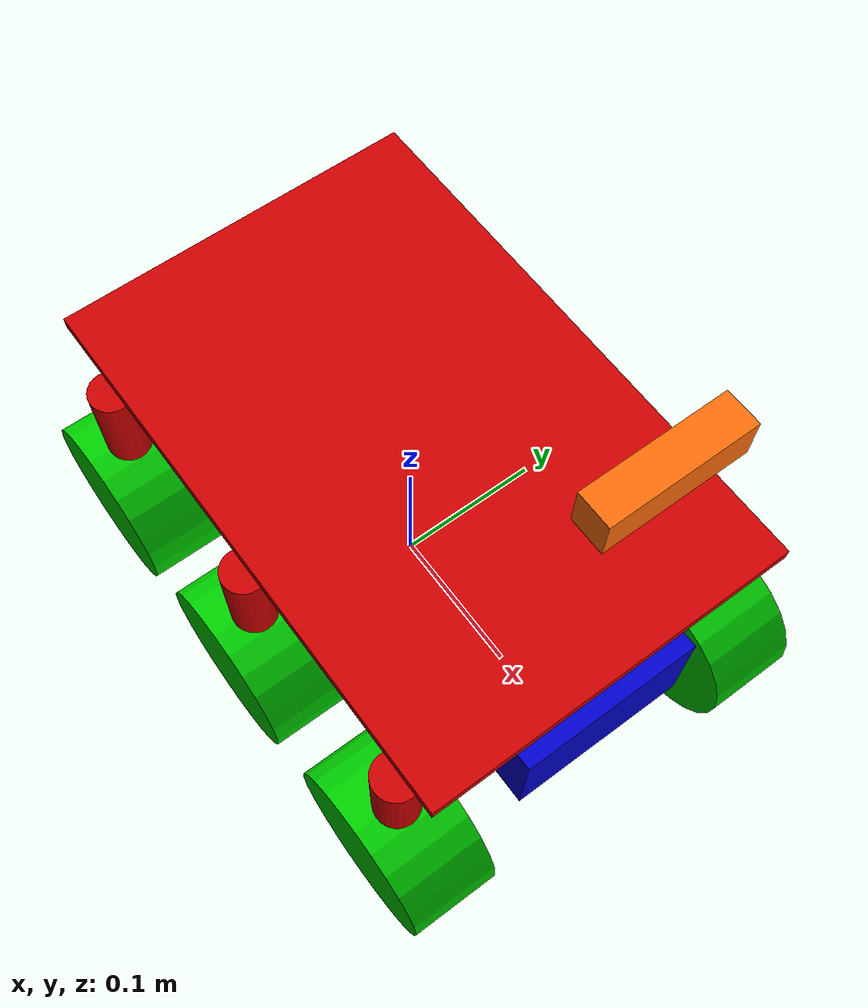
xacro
<?xml version="1.0"?>

<!-- created by MecRoKa GBi 7.4.2021-->
<!-- building the complete robot descrition by combining several (following) macros -->
<!--  1. create basic robot structure -->
<!--  2. definition/description of the control interface for ros control -->
<!--  3. definition/description of the ros2_control interface for gazebo via a 'your_controller_config.yaml' file -->

<robot xmlns:xacro="http://www.ros.org/wiki/xacro" name="myackrov">

  <!-- Import myackrov_base macro -->
  <xacro:include filename="$(find myackrov_description)/urdf/myackrov_base.urdf.xacro" />

  <!-- Import ros2 HW interface control tag macro -->
  <xacro:include filename="$(find myackrov_bringup)/ros2_control/myackrov_base.ros2_control.urdf.xacro" />

  <!-- Import setup for Gazebo macro for simulation-->
  <xacro:include filename="$(find myackrov_bringup)/gazebo/myackrov_base.gazebo.urdf.xacro" />

  <!-- Import color definitions  -->
  <xacro:include filename="$(find myackrov_description)/urdf/colors.urdf.xacro" />

  <!-- Now lets build the robot based on the defined macros before -->
  <xacro:create_myackrov_base />
  <xacro:create_ros2_control_tag/>
  <xacro:create_myackrov_gazebo_tag/>

</robot>

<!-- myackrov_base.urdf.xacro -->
<!-- created by MecRoKa GBi 15.7.2021-->
<!-- defining the robots basic structure -->

<robot xmlns:xacro="http://www.ros.org/wiki/xacro">

  <!-- define macro to create the myackrov -->
  <xacro:macro name="create_myackrov_base" >

    <!-- Setting some geometriy values -->
    <xacro:property name="axle_width" value="0.24" />
    <xacro:property name="axle_distance" value="0.15" />
    <xacro:property name="wheel_diameter" value="0.12" />
    <xacro:property name="wheel_width" value="0.06" />
    <xacro:property name="steering_height" value="0.12" />
    <xacro:property name="steering_diameter" value="0.03" />

    <!-- macro to define rough inertials -->
    <xacro:macro name="default_inertial" params="mass">
      <inertial>
        <mass value="${mass}" />
        <inertia ixx="0.01" ixy="0.0" ixz="0.0" iyy="0.01" iyz="0.0" izz="0.01" />
      </inertial>
    </xacro:macro>

    <!-- ******* start of creating all the geometrie parts and joints of the robot *******-->
    <link name="base_footprint">
      <visual>
        <geometry>
          <box size="0.01 0.01 0.01" />
        </geometry>
        <origin xyz="0 0 0"/>
      </visual>
    </link>

    <link name="base_link">
      <visual>
        <geometry>
          <box size="0.38 0.12 0.07" />
        </geometry>
        <origin xyz="0 0 0.025"/>
        <material name="blue"/>
      </visual>
      <xacro:default_inertial mass="0.1"/>
    </link>
    <joint name="footprint_to_base" type="fixed">
      <parent link="base_footprint"/>
      <child link="base_link"/>
      <origin xyz="0 0 ${wheel_diameter/2}"/>
    </joint>

    <link name="device_plate">
      <visual>
        <geometry>
          <box size="0.37 0.245 0.008" />
        </geometry>
        <material name="red"/>
      </visual>
      <xacro:default_inertial mass="2"/>
    </link>
    <joint name="base_to_plate" type="fixed">
      <parent link="base_link"/>
      <child link="device_plate"/>
      <origin xyz="0 0 0.095"/>
    </joint>

    <link name="realsense_D415_RGB_frame">
      <visual>
        <geometry>
          <box size="0.025 0.1 0.03" />
        </geometry>
        <material name="orange"/>
      </visual>
      <xacro:default_inertial mass="2"/>
    </link>

    <joint name="plate_to_realsense_D415" type="fixed">
      <parent link="device_plate"/>
      <child link="realsense_D415_RGB_frame"/>
      <origin xyz="0.125 0.07 0.065"/>
    </joint>

    <!-- defining the macro for steering link -->
    <xacro:macro name="mysteering" params="postfix front_factor left_factor joint_type">
      <link name="steering_${postfix}">
        <visual>
          <geometry>
            <cylinder length="${steering_height}" radius="${steering_diameter/2}" />
          </geometry>
          <material name="red"/>
         </visual>
         <xacro:default_inertial mass="0.2"/>
         <collision>
           <geometry>
             <cylinder length="${steering_height}" radius="${steering_diameter/2}" />
           </geometry>
         </collision>
      </link>

      <!-- define the joints from base to steering column -->
      <joint name="base_to_steering_${postfix}" type="${joint_type}">
        <parent link="base_link"/>
        <child link="steering_${postfix}"/>
        <axis xyz="0 0 1"/>
        <origin rpy="0 0 0 "
                xyz="${front_factor*axle_distance}  ${left_factor*axle_width/2} 0" />
      </joint>
    </xacro:macro>

    <!-- defining the macro for creating a wheel -->
    <xacro:macro name="mywheels" params="postfix front_factor left_factor">
      <link name="wheel_${postfix}">
        <visual>
          <geometry>
            <cylinder length="${wheel_width}" radius="${wheel_diameter/2}" />
          </geometry>
          <material name="green"/>
         </visual>
         <xacro:default_inertial mass="0.2"/>
         <collision>
           <geometry>
             <cylinder length="${wheel_width}" radius="${wheel_diameter/2}" />
           </geometry>
         </collision>
      </link>

      <!-- define the joints from steering to wheel -->
      <joint name="steering_to_wheel_${postfix}" type="continuous">
        <parent link="steering_${postfix}"/>
        <child link="wheel_${postfix}"/>
        <axis xyz="0 0 1"/>
        <origin rpy="-1.57 -1.57 0 "
                xyz="0 0 ${-steering_height/2}" />
      </joint>
    </xacro:macro>

    <!-- calling the macro to creating the 2 fixed  steering columns -->
    <xacro:mysteering postfix="left_middle"  left_factor="1"  front_factor="0" joint_type="fixed"/>
    <xacro:mysteering postfix="right_middle" left_factor="-1" front_factor="0" joint_type="fixed"/>

    <!-- calling the macro to creating the 4 moveable  steering columns -->
    <xacro:mysteering postfix="left_front"   left_factor="1"  front_factor="1"  joint_type="continuous"/>
    <xacro:mysteering postfix="left_rear"    left_factor="1"  front_factor="-1" joint_type="continuous"/>
    <xacro:mysteering postfix="right_front"  left_factor="-1" front_factor="1"  joint_type="continuous"/>
    <xacro:mysteering postfix="right_rear"   left_factor="-1" front_factor="-1" joint_type="continuous"/>

    <!-- calling the macro to creating all 6 wheels -->
    <xacro:mywheels postfix="left_middle"  left_factor="1"  front_factor="0" />
    <xacro:mywheels postfix="left_front"   left_factor="1"  front_factor="1" />
    <xacro:mywheels postfix="left_rear"    left_factor="1"  front_factor="-1" />
    <xacro:mywheels postfix="right_middle" left_factor="-1" front_factor="0" />
    <xacro:mywheels postfix="right_front"  left_factor="-1" front_factor="1" />
    <xacro:mywheels postfix="right_rear"   left_factor="-1" front_factor="-1" />
  </xacro:macro>

  <!-- realsense create depth frame with z axis pointing forward -->
    <joint name="realsense_D415_RGB_to_depth_frame" type="fixed">
      <parent link="realsense_D415_RGB_frame"/>
      <child link="realsense_D415_depth_frame" />
    </joint>
    <link name="realsense_D415_depth_frame"/>

</robot>

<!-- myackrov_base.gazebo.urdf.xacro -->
<!-- created by MecRoKa GBi 7.4.2021-->
<!-- loading ros_control plugin to be able to use ros control in Gazebo -->
<!-- the plugin instantiates the ros2_control controller manager automatically! -->

<robot xmlns:xacro="http://ros.org/wiki/xacro">

  <xacro:macro name="create_myackrov_gazebo_tag" >

    <!-- ros_control plugin enabeling contolling the robot via ros2_control in Gazebo -->
    <gazebo>
      <plugin name="gazebo_ros2_control" filename="libgazebo_ros2_control.so">
        <robotSimType>gazebo_ros_control/DefaultRobotHWSim</robotSimType>
        <parameters>$(find myackrov_bringup)/config/myackrov_base.yaml</parameters>
      </plugin>
    </gazebo>

    <!-- wheel properties definition -->
    <xacro:property name="wheel_color" value="Gazebo/Orange" />
    <xacro:macro name="mywheelProperties" params="postfix">
      <gazebo reference="wheel_${postfix}">
          <mu1>1.0</mu1>
          <mu2>1.0</mu2>
          <kp>1000000.0</kp>
          <kd>100.0</kd>
          <minDepth>0.001</minDepth>
          <maxVel>1.0</maxVel>
          <material>${wheel_color}</material>
      </gazebo>
    </xacro:macro>
    <xacro:macro name="mywheelProperties_nofriction" params="postfix">
      <gazebo reference="wheel_${postfix}">
          <mu1>0.01</mu1>
          <mu2>0.01</mu2>
          <kp>1000000.0</kp>
          <kd>100.0</kd>
          <minDepth>0.001</minDepth>
          <maxVel>1.0</maxVel>
          <material>${wheel_color}</material>
      </gazebo>
    </xacro:macro>
    <xacro:mywheelProperties postfix="left_middle" />
    <xacro:mywheelProperties_nofriction postfix="left_front"  />
    <xacro:mywheelProperties_nofriction postfix="left_rear"   />
    <xacro:mywheelProperties postfix="right_middle"/>
    <xacro:mywheelProperties_nofriction postfix="right_front" />
    <xacro:mywheelProperties_nofriction postfix="right_rear"  />

    <!-- realsense create depth frame with z axis pointing forward for gazebo plugin-->
    <joint name="realsense_D415_RGB_to_depth_frame_gazebo" type="fixed">
      <origin xyz="0 0 0" rpy="1.57079 3.14159 1.57079"/>
      <parent link="realsense_D415_RGB_frame"/>
      <child link="realsense_D415_depth_frame_gazebo" />
    </joint>
    <link name="realsense_D415_depth_frame_gazebo"/>

  </xacro:macro>

</robot>

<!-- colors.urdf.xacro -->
<robot>

  <material name="black">
    <color rgba="0.0 0.0 0.0 1.0"/>
  </material>

  <material name="blue">
    <color rgba="0.0 0.0 0.8 1.0"/>
  </material>

  <material name="green">
    <color rgba="0.0 0.8 0.0 1.0"/>
  </material>

  <material name="grey">
    <color rgba="0.2 0.2 0.2 1.0"/>
  </material>

  <material name="orange">
    <color rgba="${255/255} ${108/255} ${10/255} 1.0"/>
  </material>

  <material name="brown">
    <color rgba="${222/255} ${207/255} ${195/255} 1.0"/>
  </material>

  <material name="red">
    <color rgba="0.8 0.0 0.0 1.0"/>
  </material>

  <material name="yellow">
    <color rgba="1.0 1.0 0.0 1.0"/>
  </material>

  <material name="white">
    <color rgba="1.0 1.0 1.0 1.0"/>
  </material>

</robot>
